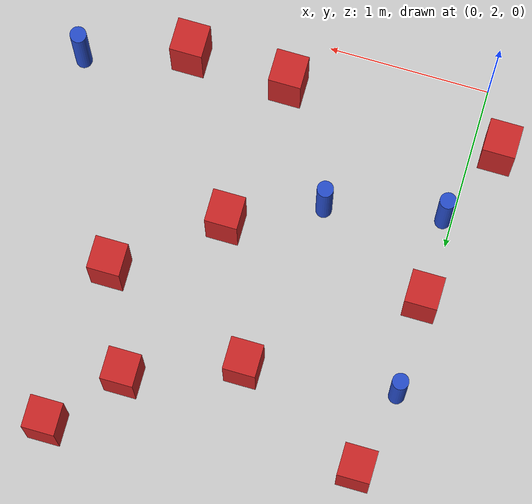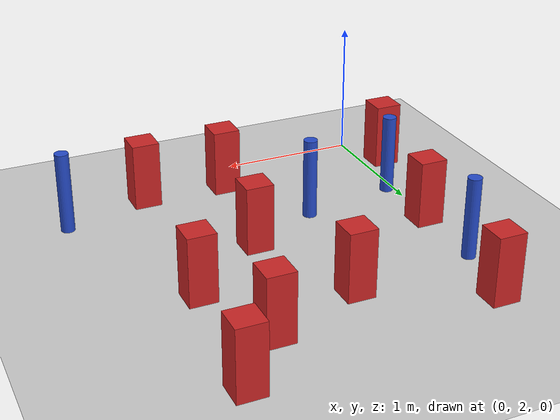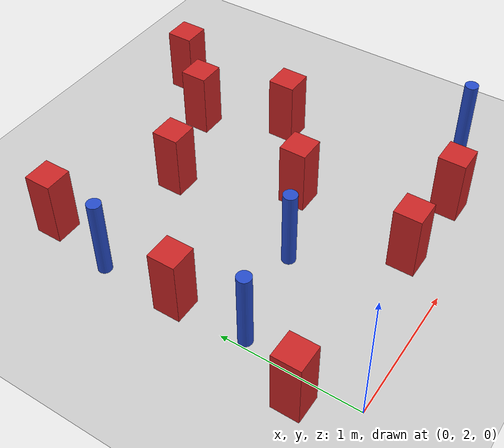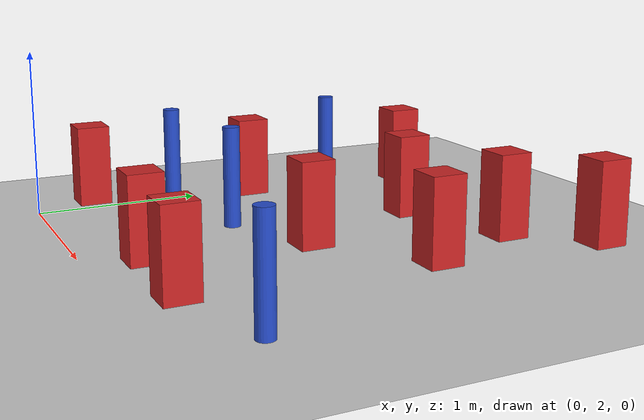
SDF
<sdf version="1.6">
 <world name="default">
  <model name="ground_plane">
   <static>1</static>
   <link name="link">
    <collision name="collision">
     <geometry><plane><normal>0 0 1</normal><size>100 100</size></plane></geometry>
     <surface><friction><ode><mu>100</mu><mu2>50</mu2></ode></friction></surface>
    </collision>
    <visual name="visual">
     <cast_shadows>0</cast_shadows>
     <geometry><plane><normal>0 0 1</normal><size>100 100</size></plane></geometry>
     <material>
      <ambient>1.0 1.0 1.0 1.0</ambient>
      <diffuse>0.8 0.8 0.8 1.0</diffuse>
      <specular>0.01 0.01 0.01 1.000000</specular>
     </material>
    </visual>
   </link>
  </model>
  <model name="pole_obstacle8">
   <static>true</static>
   <pose>0.767769919635 2.98122470118 -9.47619616065e-06 5.49618799737e-07 2.36310414066e-07 -1.55090534797e-07</pose>
   <link name="link">
    <pose>0 0 0.3 0 -0 0</pose>
    <inertial>
     <mass>1</mass>
     <inertia><ixx>0.145833</ixx><ixy>0</ixy><ixz>0</ixz><iyy>0.145833</iyy><iyz>0</iyz><izz>0.125</izz></inertia>
    </inertial>
    <collision name="collision">
     <geometry><cylinder><radius>0.05</radius><length>.6</length></cylinder></geometry>
    </collision>
    <visual name="visual">
     <geometry><cylinder><radius>0.05</radius><length>.6</length></cylinder></geometry>
     <material>
      <script><name>Gazebo/Blue</name><uri>file://media/materials/scripts/gazebo.material</uri></script>
     </material>
    </visual>
   </link>
  </model>
  <model name="square_post_obstacle28">
   <static>true</static>
   <pose>1.8963243854 3.69895529939 -6.11067671241e-07 -5.50515727128e-06 -8.79689657224e-07 2.37013304536e-05</pose>
   <link name="link">
    <pose>0 0 0.25 0 -0 0</pose>
    <inertial>
     <mass>100</mass>
     <inertia>
      <ixx>0.166667</ixx>
      <ixy>0</ixy>
      <ixz>0</ixz>
      <iyy>0.166667</iyy>
      <iyz>0</iyz>
      <izz>0.166667</izz>
     </inertia>
    </inertial>
    <collision name="collision"><geometry><box><size>.2 .2 .5</size></box></geometry></collision>
    <visual name="visual">
     <geometry><box><size>.2 .2 .5</size></box></geometry>
     <material>
      <script><name>Gazebo/Red</name><uri>file://media/materials/scripts/gazebo.material</uri></script>
     </material>
    </visual>
   </link>
  </model>
  <model name="square_post_obstacle45">
   <static>true</static>
   <pose>1.99190865364 4.70756909443 -6.11067671241e-07 -5.50515727128e-06 -8.79689657224e-07 2.37013304536e-05</pose>
   <link name="link">
    <pose>0 0 0.25 0 -0 0</pose>
    <inertial>
     <mass>100</mass>
     <inertia>
      <ixx>0.166667</ixx>
      <ixy>0</ixy>
      <ixz>0</ixz>
      <iyy>0.166667</iyy>
      <iyz>0</iyz>
      <izz>0.166667</izz>
     </inertia>
    </inertial>
    <collision name="collision"><geometry><box><size>.2 .2 .5</size></box></geometry></collision>
    <visual name="visual">
     <geometry><box><size>.2 .2 .5</size></box></geometry>
     <material>
      <script><name>Gazebo/Red</name><uri>file://media/materials/scripts/gazebo.material</uri></script>
     </material>
    </visual>
   </link>
  </model>
  <model name="pole_obstacle88">
   <static>true</static>
   <pose>0.0551312334051 2.8501928194 -9.4761961606e-06 5.49618799729e-07 2.36310413998e-07 -1.55090534825e-07</pose>
   <link name="link">
    <pose>0 0 0.3 0 -0 0</pose>
    <inertial>
     <mass>1</mass>
     <inertia><ixx>0.145833</ixx><ixy>0</ixy><ixz>0</ixz><iyy>0.145833</iyy><iyz>0</iyz><izz>0.125</izz></inertia>
    </inertial>
    <collision name="collision">
     <geometry><cylinder><radius>0.05</radius><length>.6</length></cylinder></geometry>
    </collision>
    <visual name="visual">
     <geometry><cylinder><radius>0.05</radius><length>.6</length></cylinder></geometry>
     <material>
      <script><name>Gazebo/Blue</name><uri>file://media/materials/scripts/gazebo.material</uri></script>
     </material>
    </visual>
   </link>
  </model>
  <model name="square_post_obstacle81">
   <static>true</static>
   <pose>1.180690042 2.31409241837 -6.11067671241e-07 -5.50515727128e-06 -8.79689657224e-07 2.37013304536e-05</pose>
   <link name="link">
    <pose>0 0 0.25 0 -0 0</pose>
    <inertial>
     <mass>100</mass>
     <inertia>
      <ixx>0.166667</ixx>
      <ixy>0</ixy>
      <ixz>0</ixz>
      <iyy>0.166667</iyy>
      <iyz>0</iyz>
      <izz>0.166667</izz>
     </inertia>
    </inertial>
    <collision name="collision"><geometry><box><size>.2 .2 .5</size></box></geometry></collision>
    <visual name="visual">
     <geometry><box><size>.2 .2 .5</size></box></geometry>
     <material>
      <script><name>Gazebo/Red</name><uri>file://media/materials/scripts/gazebo.material</uri></script>
     </material>
    </visual>
   </link>
  </model>
  <model name="pole_obstacle101">
   <static>true</static>
   <pose>0.0374332358474 3.95878103369 -9.47619616065e-06 5.49618799737e-07 2.36310414066e-07 -1.55090534796e-07</pose>
   <link name="link">
    <pose>0 0 0.3 0 -0 0</pose>
    <inertial>
     <mass>1</mass>
     <inertia><ixx>0.145833</ixx><ixy>0</ixy><ixz>0</ixz><iyy>0.145833</iyy><iyz>0</iyz><izz>0.125</izz></inertia>
    </inertial>
    <collision name="collision">
     <geometry><cylinder><radius>0.05</radius><length>.6</length></cylinder></geometry>
    </collision>
    <visual name="visual">
     <geometry><cylinder><radius>0.05</radius><length>.6</length></cylinder></geometry>
     <material>
      <script><name>Gazebo/Blue</name><uri>file://media/materials/scripts/gazebo.material</uri></script>
     </material>
    </visual>
   </link>
  </model>
  <model name="square_post_obstacle105">
   <static>true</static>
   <pose>1.30832829084 3.23836102406 -6.11067671241e-07 -5.50515727128e-06 -8.79689657224e-07 2.37013304536e-05</pose>
   <link name="link">
    <pose>0 0 0.25 0 -0 0</pose>
    <inertial>
     <mass>100</mass>
     <inertia>
      <ixx>0.166667</ixx>
      <ixy>0</ixy>
      <ixz>0</ixz>
      <iyy>0.166667</iyy>
      <iyz>0</iyz>
      <izz>0.166667</izz>
     </inertia>
    </inertial>
    <collision name="collision"><geometry><box><size>.2 .2 .5</size></box></geometry></collision>
    <visual name="visual">
     <geometry><box><size>.2 .2 .5</size></box></geometry>
     <material>
      <script><name>Gazebo/Red</name><uri>file://media/materials/scripts/gazebo.material</uri></script>
     </material>
    </visual>
   </link>
  </model>
  <model name="square_post_obstacle115">
   <static>true</static>
   <pose>1.63409261064 4.30810418463 -6.11067671241e-07 -5.50515727128e-06 -8.79689657224e-07 2.37013304536e-05</pose>
   <link name="link">
    <pose>0 0 0.25 0 -0 0</pose>
    <inertial>
     <mass>100</mass>
     <inertia>
      <ixx>0.166667</ixx>
      <ixy>0</ixy>
      <ixz>0</ixz>
      <iyy>0.166667</iyy>
      <iyz>0</iyz>
      <izz>0.166667</izz>
     </inertia>
    </inertial>
    <collision name="collision"><geometry><box><size>.2 .2 .5</size></box></geometry></collision>
    <visual name="visual">
     <geometry><box><size>.2 .2 .5</size></box></geometry>
     <material>
      <script><name>Gazebo/Red</name><uri>file://media/materials/scripts/gazebo.material</uri></script>
     </material>
    </visual>
   </link>
  </model>
  <model name="pole_obstacle124">
   <static>true</static>
   <pose>2.43304529755 2.48319438129 -9.47619616065e-06 5.49618799737e-07 2.36310414051e-07 -1.55090534807e-07</pose>
   <link name="link">
    <pose>0 0 0.3 0 -0 0</pose>
    <inertial>
     <mass>1</mass>
     <inertia><ixx>0.145833</ixx><ixy>0</ixy><ixz>0</ixz><iyy>0.145833</iyy><iyz>0</iyz><izz>0.125</izz></inertia>
    </inertial>
    <collision name="collision">
     <geometry><cylinder><radius>0.05</radius><length>.6</length></cylinder></geometry>
    </collision>
    <visual name="visual">
     <geometry><cylinder><radius>0.05</radius><length>.6</length></cylinder></geometry>
     <material>
      <script><name>Gazebo/Blue</name><uri>file://media/materials/scripts/gazebo.material</uri></script>
     </material>
    </visual>
   </link>
  </model>
  <model name="square_post_obstacle158">
   <static>true</static>
   <pose>0.0446554983195 3.37871515555 -6.11067671241e-07 -5.50515727128e-06 -8.79689657224e-07 2.37013304536e-05</pose>
   <link name="link">
    <pose>0 0 0.25 0 -0 0</pose>
    <inertial>
     <mass>100</mass>
     <inertia>
      <ixx>0.166667</ixx>
      <ixy>0</ixy>
      <ixz>0</ixz>
      <iyy>0.166667</iyy>
      <iyz>0</iyz>
      <izz>0.166667</izz>
     </inertia>
    </inertial>
    <collision name="collision"><geometry><box><size>.2 .2 .5</size></box></geometry></collision>
    <visual name="visual">
     <geometry><box><size>.2 .2 .5</size></box></geometry>
     <material>
      <script><name>Gazebo/Red</name><uri>file://media/materials/scripts/gazebo.material</uri></script>
     </material>
    </visual>
   </link>
  </model>
  <model name="square_post_obstacle172">
   <static>true</static>
   <pose>0.961219226005 4.05624266832 -6.11067671241e-07 -5.50515727128e-06 -8.79689657224e-07 2.37013304536e-05</pose>
   <link name="link">
    <pose>0 0 0.25 0 -0 0</pose>
    <inertial>
     <mass>100</mass>
     <inertia>
      <ixx>0.166667</ixx>
      <ixy>0</ixy>
      <ixz>0</ixz>
      <iyy>0.166667</iyy>
      <iyz>0</iyz>
      <izz>0.166667</izz>
     </inertia>
    </inertial>
    <collision name="collision"><geometry><box><size>.2 .2 .5</size></box></geometry></collision>
    <visual name="visual">
     <geometry><box><size>.2 .2 .5</size></box></geometry>
     <material>
      <script><name>Gazebo/Red</name><uri>file://media/materials/scripts/gazebo.material</uri></script>
     </material>
    </visual>
   </link>
  </model>
  <model name="square_post_obstacle216">
   <static>true</static>
   <pose>1.80063511262 2.29295233841 -6.11067671241e-07 -5.50515727128e-06 -8.79689657224e-07 2.37013304536e-05</pose>
   <link name="link">
    <pose>0 0 0.25 0 -0 0</pose>
    <inertial>
     <mass>100</mass>
     <inertia>
      <ixx>0.166667</ixx>
      <ixy>0</ixy>
      <ixz>0</ixz>
      <iyy>0.166667</iyy>
      <iyz>0</iyz>
      <izz>0.166667</izz>
     </inertia>
    </inertial>
    <collision name="collision"><geometry><box><size>.2 .2 .5</size></box></geometry></collision>
    <visual name="visual">
     <geometry><box><size>.2 .2 .5</size></box></geometry>
     <material>
      <script><name>Gazebo/Red</name><uri>file://media/materials/scripts/gazebo.material</uri></script>
     </material>
    </visual>
   </link>
  </model>
  <model name="square_post_obstacle219">
   <static>true</static>
   <pose>-0.157721063917 2.37397994081 -6.11067671241e-07 -5.50515727128e-06 -8.79689657224e-07 2.37013304536e-05</pose>
   <link name="link">
    <pose>0 0 0.25 0 -0 0</pose>
    <inertial>
     <mass>100</mass>
     <inertia>
      <ixx>0.166667</ixx>
      <ixy>0</ixy>
      <ixz>0</ixz>
      <iyy>0.166667</iyy>
      <iyz>0</iyz>
      <izz>0.166667</izz>
     </inertia>
    </inertial>
    <collision name="collision"><geometry><box><size>.2 .2 .5</size></box></geometry></collision>
    <visual name="visual">
     <geometry><box><size>.2 .2 .5</size></box></geometry>
     <material>
      <script><name>Gazebo/Red</name><uri>file://media/materials/scripts/gazebo.material</uri></script>
     </material>
    </visual>
   </link>
  </model>
  <model name="square_post_obstacle230">
   <static>true</static>
   <pose>0.149026950203 4.47289997688 -6.11067671241e-07 -5.50515727128e-06 -8.79689657224e-07 2.37013304536e-05</pose>
   <link name="link">
    <pose>0 0 0.25 0 -0 0</pose>
    <inertial>
     <mass>100</mass>
     <inertia>
      <ixx>0.166667</ixx>
      <ixy>0</ixy>
      <ixz>0</ixz>
      <iyy>0.166667</iyy>
      <iyz>0</iyz>
      <izz>0.166667</izz>
     </inertia>
    </inertial>
    <collision name="collision"><geometry><box><size>.2 .2 .5</size></box></geometry></collision>
    <visual name="visual">
     <geometry><box><size>.2 .2 .5</size></box></geometry>
     <material>
      <script><name>Gazebo/Red</name><uri>file://media/materials/scripts/gazebo.material</uri></script>
     </material>
    </visual>
   </link>
  </model>
 </world>
</sdf>
